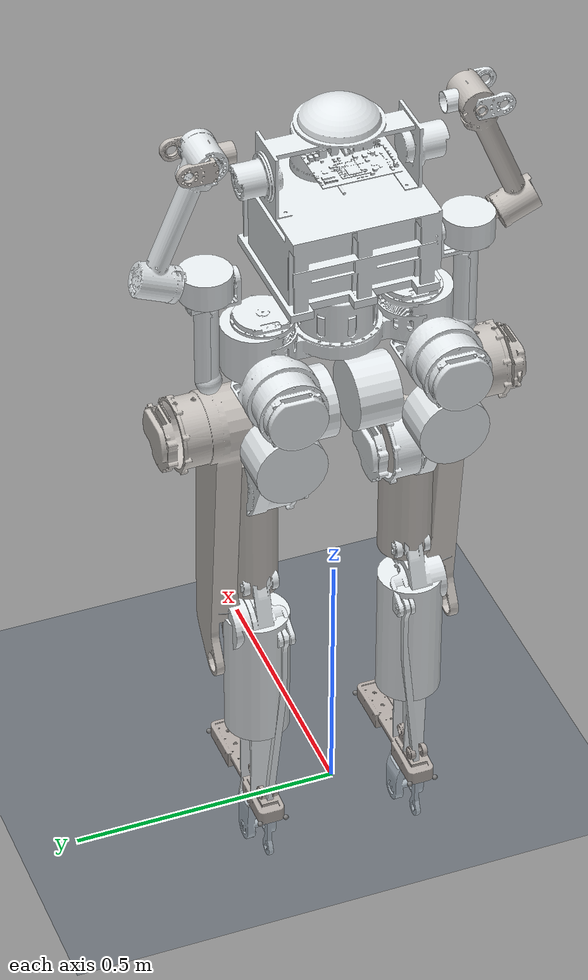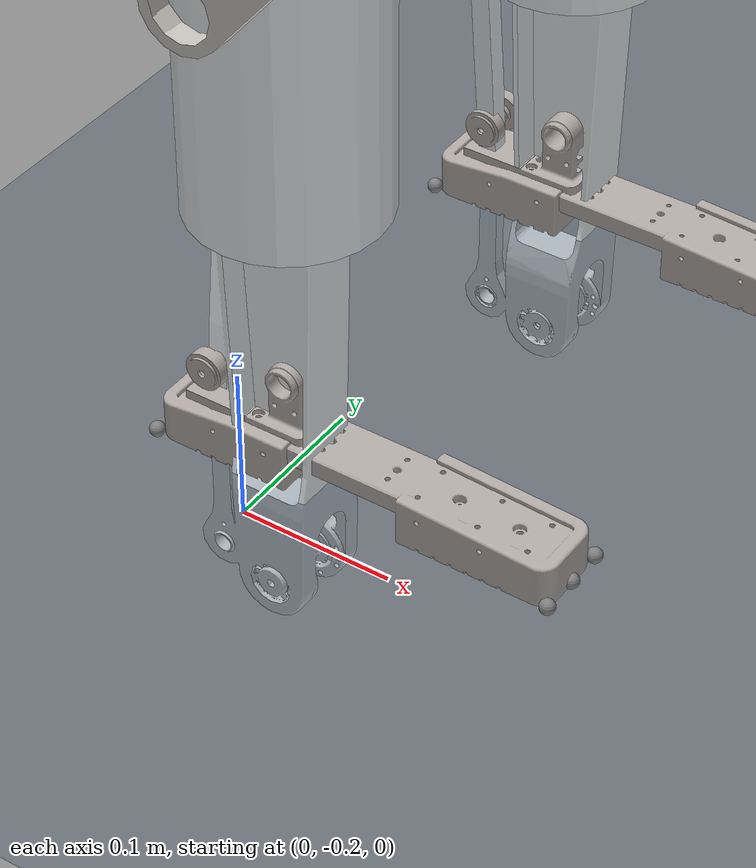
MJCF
<?xml version='1.0' encoding='utf-8'?>
<mujoco model="m4_1">
  <compiler angle="radian" meshdir="/home/noetix/Desktop/new_home/learning_based/wbc/open_src/omni_retarget/holosoma/src/holosoma_retargeting/holosoma_retargeting/models/noetix_m4_1/meshes" />

  <default>
    <joint damping="0.001" armature="0.005" frictionloss="0.1" />
  </default>

  <asset>
    <texture type="skybox" builtin="gradient" rgb1="0.3 0.5 0.7" rgb2="0 0 0" width="512" height="512" />
    <texture name="texplane" type="2d" builtin="checker" rgb1=".2 .3 .4" rgb2=".1 0.15 0.2" width="512" height="512" mark="cross" markrgb=".8 .8 .8" />

    <material name="matplane" reflectance="0." texture="texplane" texrepeat="1 1" texuniform="true" />

    <mesh name="base_link" file="base_link.STL" />
    <mesh name="l_leg_hip_yaw_link" file="l_leg_hip_yaw_link.STL" />
    <mesh name="l_leg_hip_roll_link" file="l_leg_hip_roll_link.STL" />
    <mesh name="l_leg_hip_pitch_link" file="l_leg_hip_pitch_link.STL" />
    <mesh name="l_leg_knee_link" file="l_leg_knee_link.STL" />
    <mesh name="l_leg_ankle_pitch_link" file="l_leg_ankle_pitch_link.STL" />
    <mesh name="r_leg_hip_yaw_link" file="r_leg_hip_yaw_link.STL" />
    <mesh name="r_leg_hip_roll_link" file="r_leg_hip_roll_link.STL" />
    <mesh name="r_leg_hip_pitch_link" file="r_leg_hip_pitch_link.STL" />
    <mesh name="r_leg_knee_link" file="r_leg_knee_link.STL" />
    <mesh name="r_leg_ankle_pitch_link" file="r_leg_ankle_pitch_link.STL" />
    <mesh name="waist_yaw_link" file="waist_yaw_link.STL" />
    <mesh name="l_arm_shoulder_pitch_link" file="l_arm_shoulder_pitch_link.STL" />
    <mesh name="l_arm_shoulder_roll_link" file="l_arm_shoulder_roll_link.STL" />
    <mesh name="l_arm_elbow_link" file="l_arm_elbow_link.STL" />
    <mesh name="r_arm_shoulder_pitch_link" file="r_arm_shoulder_pitch_link.STL" />
    <mesh name="r_arm_shoulder_roll_link" file="r_arm_shoulder_roll_link.STL" />
    <mesh name="r_arm_elbow_link" file="r_arm_elbow_link.STL" />
  </asset>
  <worldbody>
    <light directional="true" diffuse=".4 .4 .4" specular="0.1 0.1 0.1" pos="0 0 5.0" dir="0 0 -1" castshadow="false" />
    <light directional="true" diffuse=".6 .6 .6" specular="0.2 0.2 0.2" pos="0 0 4" dir="0 0 -1" />
    <geom name="ground" type="plane" size="0 0 1" pos="0.001 0 0" quat="1 0 0 0" material="matplane" condim="1" conaffinity="15" />

    <body name="base_link" pos="0 0 1.03">
      <inertial pos="-0.00389 0 0.03991" quat="0.668651 0.66865 -0.230009 0.230018" mass="8.82736" diaginertia="0.138676 0.137467 0.0336297" />

      <freejoint name="root" />
      <site name="imu" size="0.01" pos="0.0 0 0.0" />
      <geom type="mesh" contype="0" conaffinity="0" group="1" density="0" rgba="0.898039 0.917647 0.929412 1" mesh="base_link" />
      <geom size="0.065 0.035" pos="0 0 0.04" type="cylinder" rgba="0.898039 0.917647 0.929412 1" />
      <geom size="0.06 0.045" pos="0 0.15 0.02" type="cylinder" rgba="0.898039 0.917647 0.929412 1" />
      <geom size="0.06 0.045" pos="0 -0.15 0.02" type="cylinder" rgba="0.898039 0.917647 0.929412 1" />

      <body name="l_leg_hip_yaw_link" pos="0 0.1485 -0.0155">
        <inertial pos="-0.11144 8e-05 -0.10418" quat="0.96823 -0.0010591 -0.250059 0.000427545" mass="2.87864" diaginertia="0.0124582 0.0110747 0.00622233" />
        <joint name="l_leg_hip_yaw_joint" pos="0 0 0" axis="0 0 1" range="-0.53 0.61" actuatorfrcrange="-330 330" />
        <geom type="mesh" contype="0" conaffinity="0" group="1" density="0" rgba="0.898039 0.917647 0.929412 1" mesh="l_leg_hip_yaw_link" />
        <geom size="0.065 0.04" pos="-0.135 0 -0.115" quat="0.707388 0 0.706825 0" type="cylinder" rgba="0.898039 0.917647 0.929412 1" />
        <body name="l_leg_hip_roll_link" pos="-0.094 0 -0.12">
          <inertial pos="0.0883 -0.07132 -0.00037" quat="0.236051 0.374075 0.612159 0.655446" mass="3.16325" diaginertia="0.00968788 0.00958757 0.00773615" />
          <joint name="l_leg_hip_roll_joint" pos="0 0 0" axis="1 0 0" range="-0.26 0.4" actuatorfrcrange="-330 330" />
          <geom type="mesh" contype="0" conaffinity="0" group="1" density="0" rgba="0.898039 0.917647 0.929412 1" mesh="l_leg_hip_roll_link" />
          <geom size="0.065 0.04" pos="0.09 -0.09 0" quat="0.707388 0.706825 0 0" type="cylinder" rgba="0.898039 0.917647 0.929412 1" />
          <body name="l_leg_hip_pitch_link" pos="0.094 0 0">
            <inertial pos="0.00641 0.03616 -0.05746" quat="0.965156 -0.0690519 0.0624921 0.244543" mass="5.42998" diaginertia="0.0808424 0.0757367 0.0146739" />
            <joint name="l_leg_hip_pitch_joint" pos="0 0 0" axis="0 1 0" range="-1.91 0.75" actuatorfrcrange="-375 375" />
            <geom type="mesh" contype="0" conaffinity="0" group="1" density="0" rgba="0.776471 0.756863 0.737255 1" mesh="l_leg_hip_pitch_link" />
            <geom size="0.05 0.15" pos="0.03 0 -0.25" type="cylinder" rgba="0.776471 0.756863 0.737255 1" />
            <body name="l_leg_knee_link" pos="0 0 -0.376">
              <inertial pos="0.00717 0.00519 -0.16324" quat="0.579275 0.0217908 0.00439615 0.814829" mass="4.76722" diaginertia="0.0833944 0.080431 0.00831421" />
              <joint name="l_leg_knee_joint" pos="0 0 0" axis="0 1 0" range="0 2.44" actuatorfrcrange="-375 375" />
              <geom type="mesh" contype="0" conaffinity="0" group="1" density="0" rgba="0.898039 0.917647 0.929412 1" mesh="l_leg_knee_link" />
              <geom size="0.06 0.13" pos="0 0 -0.2" type="cylinder" rgba="0.898039 0.917647 0.929412 1" />
              <body name="l_leg_ankle_pitch_link" pos="0 0 -0.452">
                <inertial pos="0.04403 9e-05 -0.03754" quat="0.500691 0.498844 0.483005 0.516885" mass="0.68909" diaginertia="0.00312192 0.00307328 0.000249329" />
                <joint name="l_leg_ankle_pitch_joint" pos="0 0 0" axis="0 1 0" range="-0.95 0.61" actuatorfrcrange="-330 330" />
                <geom type="mesh" contype="0" conaffinity="0" group="1" density="0" rgba="0.686275 0.658824 0.639216 1" mesh="l_leg_ankle_pitch_link" />
                <geom type="mesh" rgba="0.686275 0.658824 0.639216 1" mesh="l_leg_ankle_pitch_link" />
              <body name="l_leg_ankle_pitch_sphere_1_link" pos="-0.082037508 0.0252 -0.061499998"><geom name="l_leg_ankle_pitch_sphere_1_link" type="sphere" size="0.005" contype="0" conaffinity="0" density="0" group="1" /></body><body name="l_leg_ankle_pitch_sphere_2_link" pos="-0.082037508 -0.0252 -0.061499998"><geom name="l_leg_ankle_pitch_sphere_2_link" type="sphere" size="0.005" contype="0" conaffinity="0" density="0" group="1" /></body><body name="l_leg_ankle_pitch_sphere_3_link" pos="0.18836248 0.0252 -0.061499998"><geom name="l_leg_ankle_pitch_sphere_3_link" type="sphere" size="0.005" contype="0" conaffinity="0" density="0" group="1" /></body><body name="l_leg_ankle_pitch_sphere_4_link" pos="0.18836248 -0.0252 -0.061499998"><geom name="l_leg_ankle_pitch_sphere_4_link" type="sphere" size="0.005" contype="0" conaffinity="0" density="0" group="1" /></body><body name="l_leg_ankle_pitch_sphere_5_link" pos="0.18836248 0 -0.061499998"><geom name="l_leg_ankle_pitch_sphere_5_link" type="sphere" size="0.005" contype="0" conaffinity="0" density="0" group="1" /></body></body>
            </body>
          </body>
        </body>
      </body>
      <body name="r_leg_hip_yaw_link" pos="0 -0.1485 -0.0155">
        <inertial pos="-0.11144 -7e-05 -0.10418" quat="0.968229 0.00117978 -0.250062 -0.000855637" mass="2.87863" diaginertia="0.0124582 0.0110747 0.00622233" />
        <joint name="r_leg_hip_yaw_joint" pos="0 0 0" axis="0 0 1" range="-0.61 0.53" actuatorfrcrange="-330 330" />
        <geom type="mesh" contype="0" conaffinity="0" group="1" density="0" rgba="0.898039 0.917647 0.929412 1" mesh="r_leg_hip_yaw_link" />
        <geom size="0.065 0.04" pos="-0.135 0 -0.115" quat="0.707388 0 0.706825 0" type="cylinder" rgba="0.898039 0.917647 0.929412 1" />
        <body name="r_leg_hip_roll_link" pos="-0.094 0 -0.12">
          <inertial pos="0.08837 0.07132 -0.00041" quat="0.658934 0.608202 0.37926 0.228162" mass="3.16329" diaginertia="0.00970341 0.00957559 0.00773784" />
          <joint name="r_leg_hip_roll_joint" pos="0 0 0" axis="1 0 0" range="-0.4 0.26" actuatorfrcrange="-330 330" />
          <geom type="mesh" contype="0" conaffinity="0" group="1" density="0" rgba="0.898039 0.917647 0.929412 1" mesh="r_leg_hip_roll_link" />
          <geom size="0.065 0.04" pos="0.09 0.09 0" quat="0.707388 0.706825 0 0" type="cylinder" rgba="0.898039 0.917647 0.929412 1" />
          <body name="r_leg_hip_pitch_link" pos="0.094 0 0">
            <inertial pos="0.00637 -0.03616 -0.05743" quat="0.964803 0.0689981 0.062651 -0.245904" mass="5.43038" diaginertia="0.0808724 0.0757536 0.0146862" />
            <joint name="r_leg_hip_pitch_joint" pos="0 0 0" axis="0 1 0" range="-1.91 0.75" actuatorfrcrange="-375 375" />
            <geom type="mesh" contype="0" conaffinity="0" group="1" density="0" rgba="0.776471 0.756863 0.737255 1" mesh="r_leg_hip_pitch_link" />
            <geom size="0.05 0.15" pos="0.03 0 -0.25" type="cylinder" rgba="0.776471 0.756863 0.737255 1" />
            <body name="r_leg_knee_link" pos="0 0 -0.376">
              <inertial pos="0.00716 -0.00519 -0.16323" quat="0.814823 0.00439844 0.0218047 0.579283" mass="4.76686" diaginertia="0.0833946 0.0804314 0.00831366" />
              <joint name="r_leg_knee_joint" pos="0 0 0" axis="0 1 0" range="0 2.44" actuatorfrcrange="-375 375" />
              <geom type="mesh" contype="0" conaffinity="0" group="1" density="0" rgba="0.898039 0.917647 0.929412 1" mesh="r_leg_knee_link" />
              <geom size="0.06 0.13" pos="0 0 -0.2" type="cylinder" rgba="0.898039 0.917647 0.929412 1" />
              <body name="r_leg_ankle_pitch_link" pos="0 0 -0.452">
                <inertial pos="0.04403 9e-05 -0.03754" quat="0.500691 0.498844 0.483005 0.516885" mass="0.68909" diaginertia="0.00312192 0.00307328 0.000249329" />
                <joint name="r_leg_ankle_pitch_joint" pos="0 0 0" axis="0 1 0" range="-0.95 0.61" actuatorfrcrange="-330 330" />
                <geom type="mesh" contype="0" conaffinity="0" group="1" density="0" rgba="0.686275 0.658824 0.639216 1" mesh="r_leg_ankle_pitch_link" />
                <geom type="mesh" rgba="0.686275 0.658824 0.639216 1" mesh="r_leg_ankle_pitch_link" />
              <body name="r_leg_ankle_pitch_sphere_1_link" pos="-0.082037508 0.0252 -0.061499998"><geom name="r_leg_ankle_pitch_sphere_1_link" type="sphere" size="0.005" contype="0" conaffinity="0" density="0" group="1" /></body><body name="r_leg_ankle_pitch_sphere_2_link" pos="-0.082037508 -0.0252 -0.061499998"><geom name="r_leg_ankle_pitch_sphere_2_link" type="sphere" size="0.005" contype="0" conaffinity="0" density="0" group="1" /></body><body name="r_leg_ankle_pitch_sphere_3_link" pos="0.18836248 0.0252 -0.061499998"><geom name="r_leg_ankle_pitch_sphere_3_link" type="sphere" size="0.005" contype="0" conaffinity="0" density="0" group="1" /></body><body name="r_leg_ankle_pitch_sphere_4_link" pos="0.18836248 -0.0252 -0.061499998"><geom name="r_leg_ankle_pitch_sphere_4_link" type="sphere" size="0.005" contype="0" conaffinity="0" density="0" group="1" /></body><body name="r_leg_ankle_pitch_sphere_5_link" pos="0.18836248 0 -0.061499998"><geom name="r_leg_ankle_pitch_sphere_5_link" type="sphere" size="0.005" contype="0" conaffinity="0" density="0" group="1" /></body></body>
            </body>
          </body>
        </body>
      </body>
      <body name="waist_yaw_link" pos="0 0 0.1203">
        <inertial pos="-0.01308 0.00391 0.15282" quat="0.991653 0.0158922 0.0784487 -0.101079" mass="14.9299" diaginertia="0.314317 0.287661 0.243833" />
        <joint name="waist_yaw_joint" pos="0 0 0" axis="0 0 1" range="-1.57 1.57" actuatorfrcrange="-330 330" />
        <geom type="mesh" contype="0" conaffinity="0" group="1" density="0" rgba="0.898039 0.917647 0.929412 1" mesh="waist_yaw_link" />
        <body name="l_arm_shoulder_pitch_link" pos="-0.0047442 0.1845 0.30392">
          <inertial pos="0.01361 0.04692 0.00014" quat="0.0777942 0.700575 -0.0742071 0.705433" mass="0.6189" diaginertia="0.000731042 0.000614906 0.000417104" />
          <joint name="l_arm_shoulder_pitch_joint" pos="0 0 0" axis="0 1 0" range="-1.74 1.74" actuatorfrcrange="-70 70" />
          <geom type="mesh" contype="0" conaffinity="0" group="1" density="0" rgba="0.776471 0.756863 0.737255 1" mesh="l_arm_shoulder_pitch_link" />
          <body name="l_arm_shoulder_roll_link" pos="0.0047442 0.053 7.9003e-05">
            <inertial pos="-0.00048 -0.00679 -0.20448" quat="0.999588 0.0286669 -0.00031088 0.00120157" mass="0.84439" diaginertia="0.00615251 0.0059926 0.000786474" />
            <joint name="l_arm_shoulder_roll_joint" pos="0 0 0" axis="1 0 0" range="-0.14 1.57" actuatorfrcrange="-70 70" />
            <geom type="mesh" contype="0" conaffinity="0" group="1" density="0" rgba="0.898039 0.917647 0.929412 1" mesh="l_arm_shoulder_roll_link" />
            <body name="l_arm_elbow_link" pos="-0.00050012 0 -0.256">
              <inertial pos="0 0.00045 -0.09034" quat="1 -0.00059075 2.66126e-05 0.000131335" mass="0.2445" diaginertia="0.00110004 0.000966597 0.000194853" />
              <joint name="l_arm_elbow_joint" pos="0 0 0" axis="0 1 0" range="-2.18 0.09" actuatorfrcrange="-70 70" />
              <geom type="mesh" contype="0" conaffinity="0" group="1" density="0" rgba="0.898039 0.917647 0.929412 1" mesh="l_arm_elbow_link" />
              <geom size="0.047 0.025" pos="0.001 -0.001 0" type="cylinder" rgba="0.898039 0.917647 0.929412 1" />
              <geom size="0.02 0.085" pos="0.001 0 -0.12" type="cylinder" rgba="0.898039 0.917647 0.929412 1" />
            <body name="l_arm_hand_sphere_link" pos="6.519258e-09 0.00049978867 -0.2165"><geom name="l_arm_hand_sphere_link" type="sphere" size="0.005" contype="0" conaffinity="0" density="0" group="1" /></body></body>
          </body>
        </body>
        <body name="r_arm_shoulder_pitch_link" pos="0.0047442 -0.1845 0.30392">
          <inertial pos="0.00437 -0.04692 0.00016" quat="-0.0631804 0.701068 0.0686404 0.706966" mass="0.6189" diaginertia="0.000728348 0.000609721 0.000419578" />
          <joint name="r_arm_shoulder_pitch_joint" pos="0 0 0" axis="0 1 0" range="-1.74 1.74" actuatorfrcrange="-70 70" />
          <geom type="mesh" contype="0" conaffinity="0" group="1" density="0" rgba="0.898039 0.917647 0.929412 1" mesh="r_arm_shoulder_pitch_link" />
          <body name="r_arm_shoulder_roll_link" pos="-0.0047442 -0.053 7.9003e-05">
            <inertial pos="-0.00048 0.00679 -0.20448" quat="0.999588 -0.0286908 -0.000242028 -0.000778959" mass="0.84439" diaginertia="0.00615148 0.00599292 0.000787814" />
            <joint name="r_arm_shoulder_roll_joint" pos="0 0 0" axis="1 0 0" range="-1.57 0.14" actuatorfrcrange="-70 70" />
            <geom type="mesh" contype="0" conaffinity="0" group="1" density="0" rgba="0.776471 0.756863 0.737255 1" mesh="r_arm_shoulder_roll_link" />
            <body name="r_arm_elbow_link" pos="-0.00049988 0 -0.256">
              <inertial pos="0 -0.00045 -0.09034" quat="1 0.000590737 -2.65725e-05 0.000114399" mass="0.2445" diaginertia="0.00110004 0.000966598 0.000194853" />
              <joint name="r_arm_elbow_joint" pos="0 0 0" axis="0 1 0" range="-2.18 0.09" actuatorfrcrange="-70 70" />
              <geom type="mesh" contype="0" conaffinity="0" group="1" density="0" rgba="0.898039 0.917647 0.929412 1" mesh="r_arm_elbow_link" />
              <geom size="0.047 0.025" pos="0.001 -0.001 0" type="cylinder" rgba="0.898039 0.917647 0.929412 1" />
              <geom size="0.02 0.085" pos="0.001 0 -0.12" type="cylinder" rgba="0.898039 0.917647 0.929412 1" />
            <body name="r_arm_hand_sphere_link" pos="6.519258e-09 -0.00049978867 -0.2165"><geom name="r_arm_hand_sphere_link" type="sphere" size="0.005" contype="0" conaffinity="0" density="0" group="1" /></body></body>
          </body>
        </body>
      </body>
    </body>
  </worldbody>
  <actuator>
    <motor name="l_leg_hip_yaw" joint="l_leg_hip_yaw_joint" />
    <motor name="l_leg_hip_roll" joint="l_leg_hip_roll_joint" />
    <motor name="l_leg_hip_pitch" joint="l_leg_hip_pitch_joint" />
    <motor name="l_leg_knee" joint="l_leg_knee_joint" />
    <motor name="l_leg_ankle_pitch" joint="l_leg_ankle_pitch_joint" />

    <motor name="r_leg_hip_yaw" joint="r_leg_hip_yaw_joint" />
    <motor name="r_leg_hip_roll" joint="r_leg_hip_roll_joint" />
    <motor name="r_leg_hip_pitch" joint="r_leg_hip_pitch_joint" />
    <motor name="r_leg_knee" joint="r_leg_knee_joint" />
    <motor name="r_leg_ankle_pitch" joint="r_leg_ankle_pitch_joint" />

    <motor name="waist_yaw" joint="waist_yaw_joint" />

    <motor name="l_arm_shoulder_pitch" joint="l_arm_shoulder_pitch_joint" />
    <motor name="l_arm_shoulder_roll" joint="l_arm_shoulder_roll_joint" />
    <motor name="l_arm_elbow" joint="l_arm_elbow_joint" />

    <motor name="r_arm_shoulder_pitch" joint="r_arm_shoulder_pitch_joint" />
    <motor name="r_arm_shoulder_roll" joint="r_arm_shoulder_roll_joint" />
    <motor name="r_arm_elbow" joint="r_arm_elbow_joint" />
  </actuator>
  <sensor>
      <framequat name="orientation" objtype="site" noise="0.001" objname="imu" />
      <framepos name="position" objtype="site" noise="0.001" objname="imu" />
      <gyro name="angular-velocity" site="imu" noise="0.005" cutoff="34.9" />
      <velocimeter name="linear-velocity" site="imu" noise="0.001" cutoff="30" />
      <accelerometer name="linear-acceleration" site="imu" noise="0.005" cutoff="157" />
      <magnetometer name="magnetometer" site="imu" />
  </sensor>
</mujoco>
